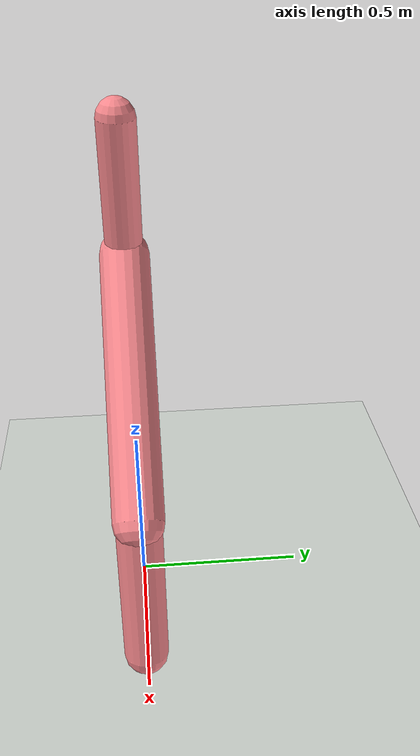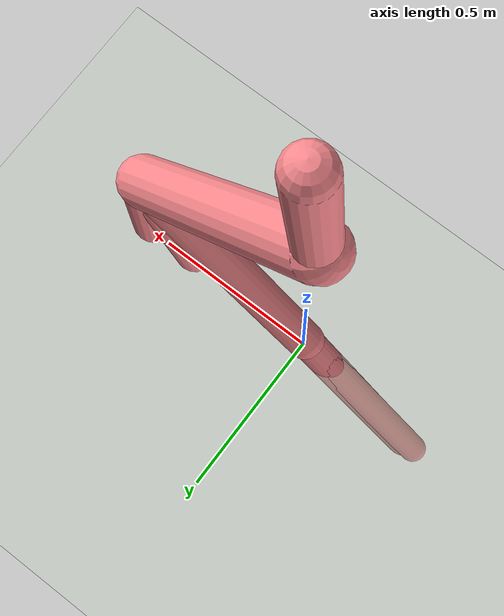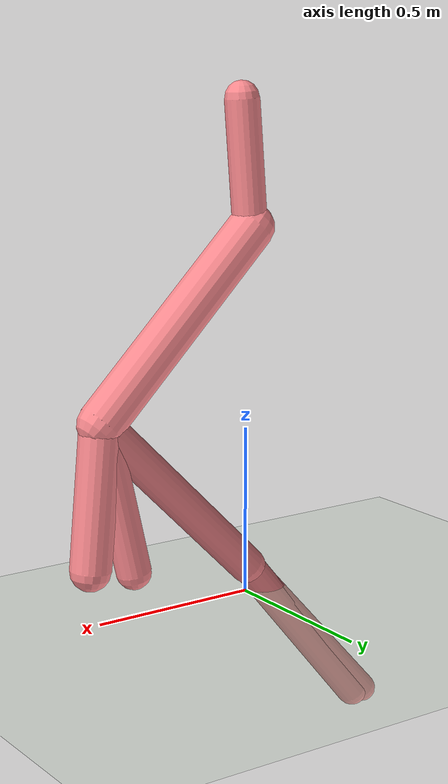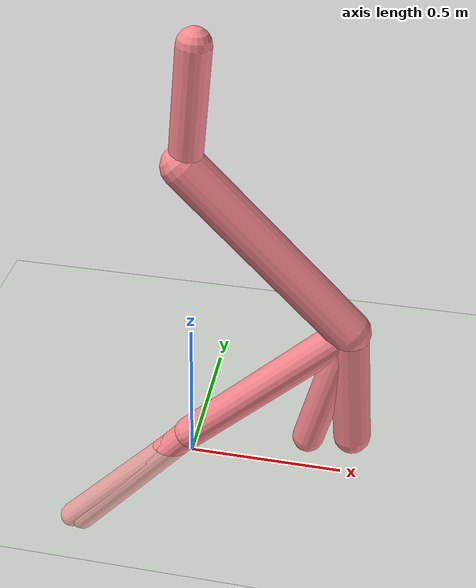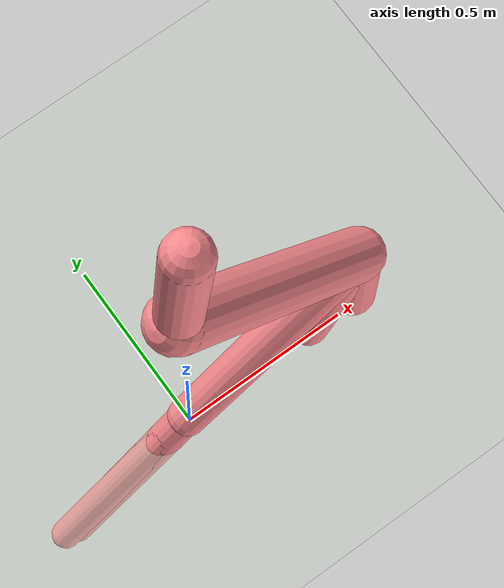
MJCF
<mujoco model="hopper">
  <compiler angle="degree" coordinate="global" inertiafromgeom="true"/>
  <default>
    <joint armature="1" damping="1" limited="true"/>
    <geom conaffinity="1" condim="1" contype="1" margin="0.001" rgba=".98 .54 .56 1." solimp=".8 .8 .01" solref=".02 1"/>
    <motor ctrllimited="true" ctrlrange="-.4 .4"/>
  </default>
  <option integrator="RK4" timestep="0.002"/>
  <visual>
    <headlight ambient=".1 .1 .1" diffuse=".6 .6 .6" specular="0.3 0.3 0.3"/>
    <map znear=".01"/>
    <quality shadowsize="16384"/>
  </visual>
  <worldbody>
    <light cutoff="100" diffuse="1 1 1" dir="-1 0 -1.3" directional="true" exponent="1" pos="1 0 1.3" specular=".1 .1 .1" castshadow="true"/>
    <geom conaffinity="1" condim="3" name="floor" pos="0 0 0" rgba="0.8 0.9 0.8 1" size="200 200 .125" type="plane" material="grid_new"/>
    <body name="0" pos="0 0 1.25">
      <camera name="track" mode="trackcom" pos="0 -3 1" xyaxes="1 0 0 0 0 1"/>
      <joint armature="0" axis="1 0 0" damping="0" limited="false" name="rootx" pos="0 0 0" stiffness="0" type="slide"/>
      <joint armature="0" axis="0 0 1" damping="0" limited="false" name="rootz" pos="0 0 0" ref="1.25" stiffness="0" type="slide"/>
      <joint armature="0" axis="0 1 0" damping="0" limited="false" name="0_joint" pos="0 0 1.25" stiffness="0" type="hinge"/>
      <geom friction="0.9" fromto="0.014957 0 1.439562 -0.013578 0 1.077909" size="0.050059" type="capsule"/>
      <body name="1" pos="-0.013578 0 1.077909">
        <joint axis="0 -1 0" name="1_joint" pos="-0.013578 0 1.077909" range="-360 360" type="hinge"/>
        <geom friction="2.0" fromto="-0.018349 0 1.082687 0.485602 0 0.577923" size="0.066516" type="capsule"/>
        <body name="11" pos="0.485602 0 0.577923">
          <joint axis="0 -1 0" name="11_joint" pos="0.485602 0 0.577923" range="-360 360" type="hinge"/>
          <geom friction="2.0" fromto="0.486811 0 0.57915 -0.007184 0 0.077995" size="0.053909" type="capsule"/>
          <body name="111" pos="-0.007184 0 0.077995">
            <joint axis="0 -1 0" name="111_joint" pos="-0.007184 0 0.077995" range="-360 360" type="hinge"/>
            <geom friction="2.0" fromto="-0.003566 0 0.082399 -0.41582 0 -0.4194" size="0.047517" type="capsule"/>
          </body>
          <body name="211" pos="-0.007184 0 0.077995">
            <joint axis="0 -1 0" name="211_joint" pos="-0.007184 0 0.077995" range="-360 360" type="hinge"/>
            <geom friction="2.0" fromto="-0.004197 0 0.081318 -0.455705 0 -0.420902" size="0.043401" type="capsule"/>
          </body>
        </body>
        <body name="21" pos="0.485602 0 0.577923">
          <joint axis="0 -1 0" name="21_joint" pos="0.485602 0 0.577923" range="-360 360" type="hinge"/>
          <geom friction="2.0" fromto="0.485407 0 0.579893 0.526423 0 0.165853" size="0.059563" type="capsule"/>
        </body>
        <body name="31" pos="0.485602 0 0.577923">
          <joint axis="0 -1 0" name="31_joint" pos="0.485602 0 0.577923" range="-360 360" type="hinge"/>
          <geom friction="2.0" fromto="0.486261 0 0.580872 0.38673 0 0.135059" size="0.051256" type="capsule"/>
        </body>
      </body>
    </body>
  </worldbody>
  <actuator>
    <motor ctrllimited="true" ctrlrange="-1.0 1.0" gear="230.656875" joint="1_joint" name="1_joint"/>
    <motor ctrllimited="true" ctrlrange="-1.0 1.0" gear="303.131273" joint="11_joint" name="11_joint"/>
    <motor ctrllimited="true" ctrlrange="-1.0 1.0" gear="257.178047" joint="21_joint" name="21_joint"/>
    <motor ctrllimited="true" ctrlrange="-1.0 1.0" gear="224.989669" joint="111_joint" name="111_joint"/>
    <motor ctrllimited="true" ctrlrange="-1.0 1.0" gear="363.059601" joint="31_joint" name="31_joint"/>
    <motor ctrllimited="true" ctrlrange="-1.0 1.0" gear="263.923305" joint="211_joint" name="211_joint"/>
  </actuator>
  <asset>
    <texture type="skybox" builtin="gradient" rgb1=".4 .5 .6" rgb2="0 0 0" width="100" height="100"/>
    <texture builtin="flat" height="1278" mark="cross" markrgb="1 1 1" name="texgeom" random="0.01" rgb1="0.8 0.6 0.4" rgb2="0.8 0.6 0.4" type="cube" width="127"/>
    <texture builtin="checker" height="100" name="texplane" rgb1="0 0 0" rgb2="0.8 0.8 0.8" type="2d" width="100"/>
    <material name="MatPlane" reflectance="0.5" shininess="1" specular="1" texrepeat="60 60" texture="texplane"/>
    <material name="geom" texture="texgeom" texuniform="true"/>
    <texture name="grid_new" type="2d" builtin="checker" rgb1=".1 .3 .2" rgb2=".2 .4 .3" width="1000" height="1000" mark="none" markrgb=".8 .6 .4"/>
    <material name="grid_new" texture="grid_new" texrepeat="0.2 0.2" texuniform="true" reflectance=".2"/>
  </asset>
</mujoco>
